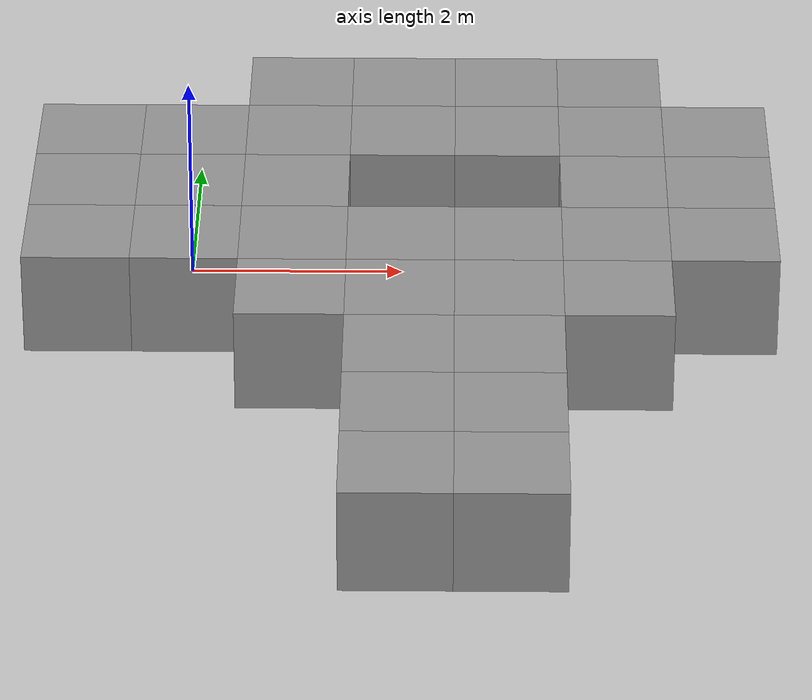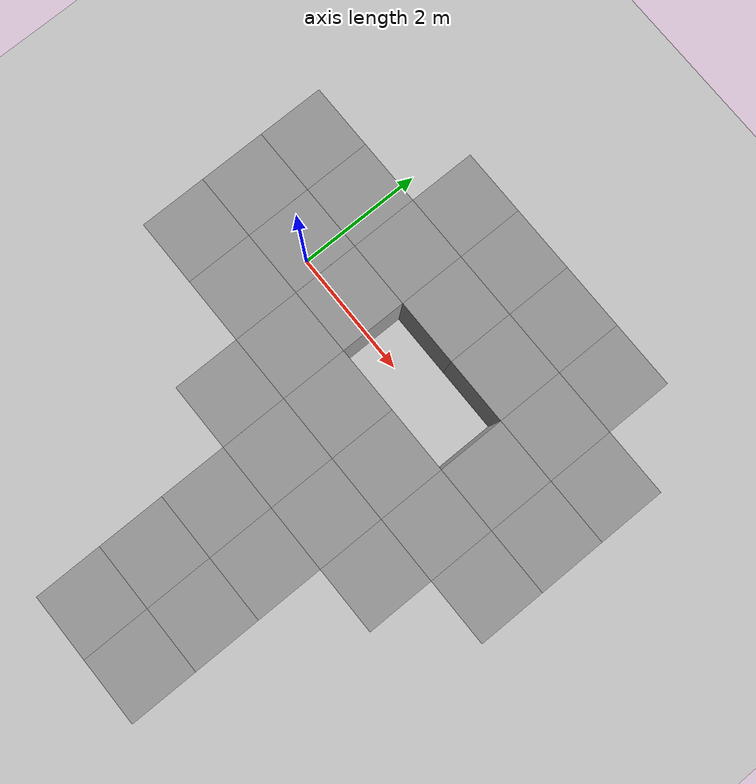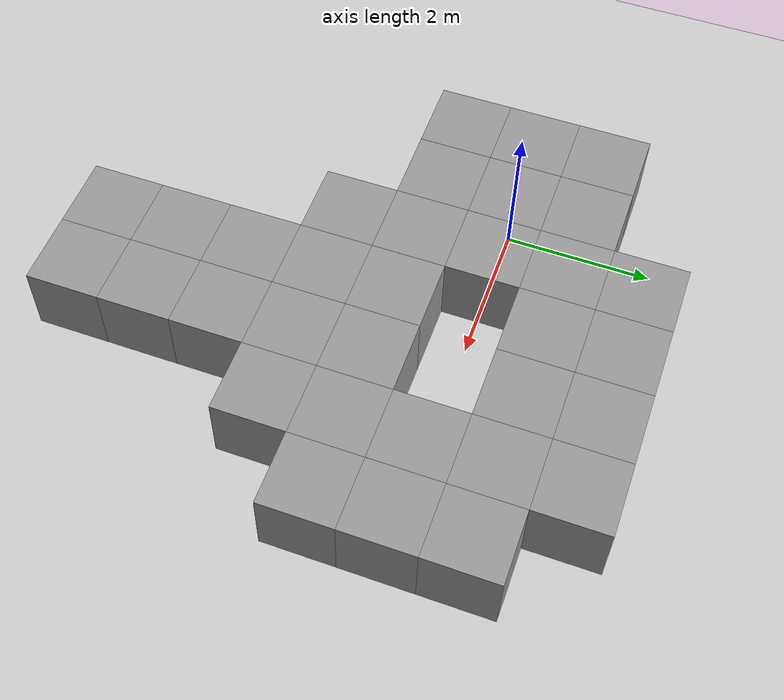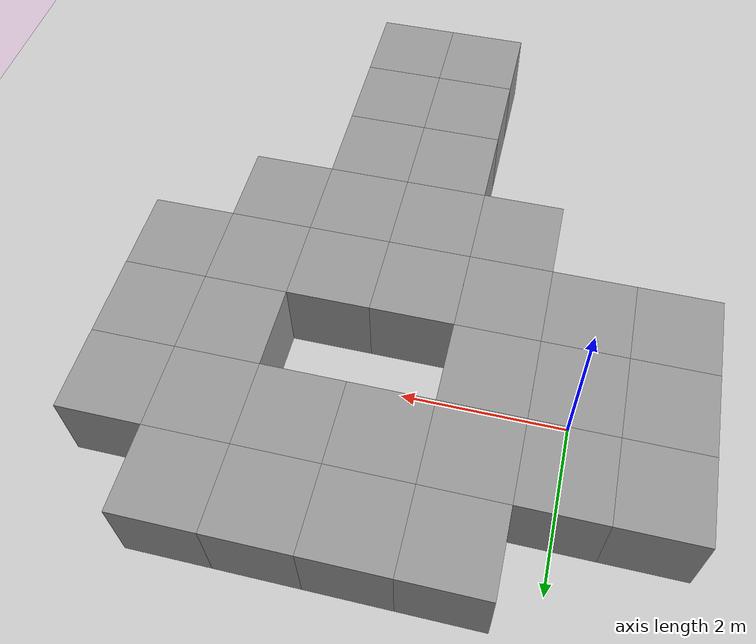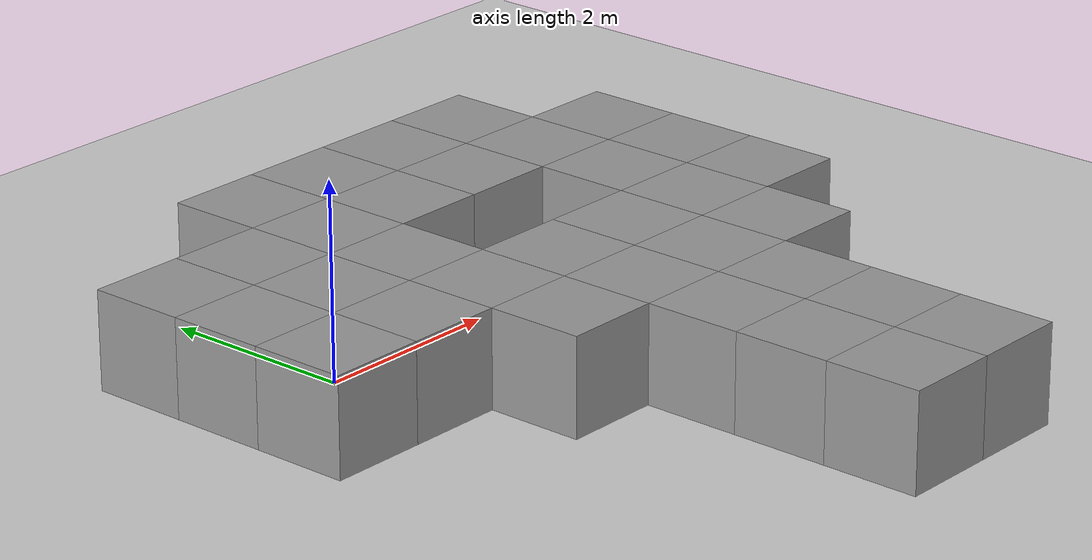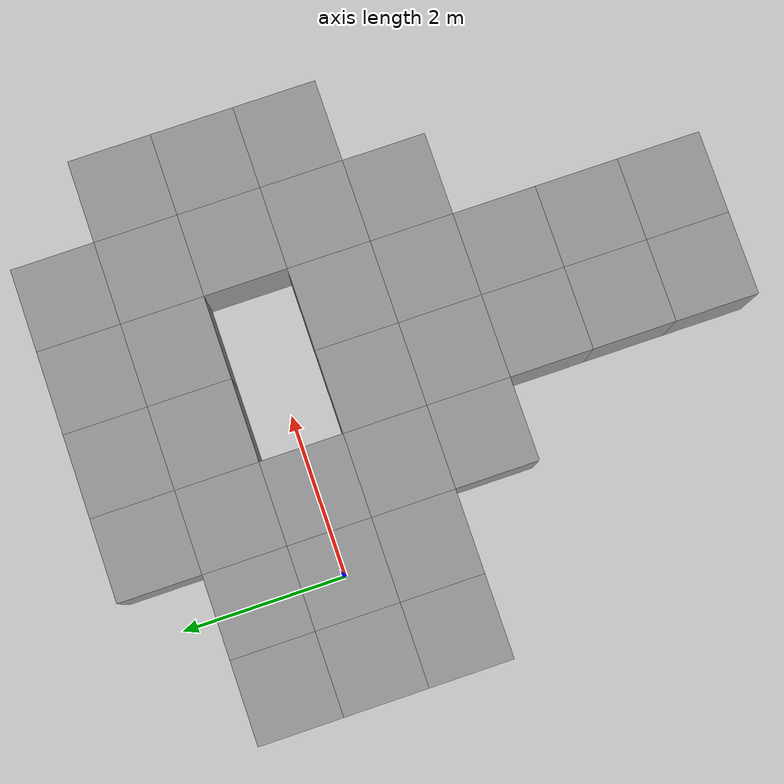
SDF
<sdf version="1.4">
 <world name="default">
  <light name="sun" type="directional">
   <pose>0 0 10 0 -0 0</pose>
   <diffuse>0.8 0.8 0.8 1</diffuse>
   <specular>0.2 0.2 0.2 1</specular>
   <attenuation>
    <range>1000</range>
    <constant>0.9</constant>
    <linear>0.01</linear>
    <quadratic>0.001</quadratic>
   </attenuation>
   <direction>-0.5 0.1 -0.9</direction>
  </light>
  <model name="ground_plane">
   <static>1</static>
   <link name="link">
    <collision name="collision">
     <geometry><plane><normal>0 0 1</normal><size>100 100</size></plane></geometry>
     <surface><friction><ode><mu>100</mu><mu2>50</mu2></ode></friction></surface>
    </collision>
    <visual name="visual">
     <cast_shadows>0</cast_shadows>
     <geometry><plane><normal>0 0 1</normal><size>100 100</size></plane></geometry>
     <material>
      <script><uri>file://media/materials/scripts/gazebo.material</uri><name>Gazebo/Grey</name></script>
     </material>
    </visual>
    <velocity_decay><linear>0</linear><angular>0</angular></velocity_decay>
   </link>
  </model>
  <physics type="ode">
   <max_step_size>0.001</max_step_size>
   <real_time_factor>1</real_time_factor>
   <real_time_update_rate>1000</real_time_update_rate>
   <gravity>0 0 -9.8</gravity>
  </physics>
  <scene><ambient>0.4 0.4 0.4 1</ambient><background>0.7 0.7 0.7 1</background><shadows>1</shadows></scene>
  <spherical_coordinates>
   <surface_model>EARTH_WGS84</surface_model>
   <latitude_deg>0</latitude_deg>
   <longitude_deg>0</longitude_deg>
   <elevation>0</elevation>
   <heading_deg>0</heading_deg>
  </spherical_coordinates>
  <model name="unit_box_4">
   <pose>3.3e-05 -7e-06 0.5 0 -0 1e-05</pose>
   <link name="link">
    <inertial>
     <mass>1</mass>
     <inertia><ixx>1</ixx><ixy>0</ixy><ixz>0</ixz><iyy>1</iyy><iyz>0</iyz><izz>1</izz></inertia>
    </inertial>
    <collision name="collision"><geometry><box><size>1 1 1</size></box></geometry></collision>
    <visual name="visual">
     <geometry><box><size>1 1 1</size></box></geometry>
     <material>
      <script><uri>file://media/materials/scripts/gazebo.material</uri><name>Gazebo/Grey</name></script>
     </material>
    </visual>
    <velocity_decay><linear>0</linear><angular>0</angular></velocity_decay>
   </link>
   <static>1</static>
  </model>
  <model name="unit_box_5">
   <pose>-2.5e-05 -1.00001 0.5 0 -0 3e-06</pose>
   <link name="link">
    <inertial>
     <mass>1</mass>
     <inertia><ixx>1</ixx><ixy>0</ixy><ixz>0</ixz><iyy>1</iyy><iyz>0</iyz><izz>1</izz></inertia>
    </inertial>
    <collision name="collision"><geometry><box><size>1 1 1</size></box></geometry></collision>
    <visual name="visual">
     <geometry><box><size>1 1 1</size></box></geometry>
     <material>
      <script><uri>file://media/materials/scripts/gazebo.material</uri><name>Gazebo/Grey</name></script>
     </material>
    </visual>
    <velocity_decay><linear>0</linear><angular>0</angular></velocity_decay>
   </link>
   <static>1</static>
  </model>
  <model name="unit_box_6">
   <pose>-6e-06 1 0.5 0 -0 0</pose>
   <link name="link">
    <inertial>
     <mass>1</mass>
     <inertia><ixx>1</ixx><ixy>0</ixy><ixz>0</ixz><iyy>1</iyy><iyz>0</iyz><izz>1</izz></inertia>
    </inertial>
    <collision name="collision"><geometry><box><size>1 1 1</size></box></geometry></collision>
    <visual name="visual">
     <geometry><box><size>1 1 1</size></box></geometry>
     <material>
      <script><uri>file://media/materials/scripts/gazebo.material</uri><name>Gazebo/Grey</name></script>
     </material>
    </visual>
    <velocity_decay><linear>0</linear><angular>0</angular></velocity_decay>
   </link>
   <static>1</static>
  </model>
  <model name="unit_box_7">
   <pose>0.999997 0.999999 0.5 0 -0 0</pose>
   <link name="link">
    <inertial>
     <mass>1</mass>
     <inertia><ixx>1</ixx><ixy>0</ixy><ixz>0</ixz><iyy>1</iyy><iyz>0</iyz><izz>1</izz></inertia>
    </inertial>
    <collision name="collision"><geometry><box><size>1 1 1</size></box></geometry></collision>
    <visual name="visual">
     <geometry><box><size>1 1 1</size></box></geometry>
     <material>
      <script><uri>file://media/materials/scripts/gazebo.material</uri><name>Gazebo/Grey</name></script>
     </material>
    </visual>
    <velocity_decay><linear>0</linear><angular>0</angular></velocity_decay>
   </link>
   <static>1</static>
  </model>
  <model name="unit_box_8">
   <pose>1.00015 -1e-06 0.5 0 -0 0</pose>
   <link name="link">
    <inertial>
     <mass>1</mass>
     <inertia><ixx>1</ixx><ixy>0</ixy><ixz>0</ixz><iyy>1</iyy><iyz>0</iyz><izz>1</izz></inertia>
    </inertial>
    <collision name="collision"><geometry><box><size>1 1 1</size></box></geometry></collision>
    <visual name="visual">
     <geometry><box><size>1 1 1</size></box></geometry>
     <material>
      <script><uri>file://media/materials/scripts/gazebo.material</uri><name>Gazebo/Grey</name></script>
     </material>
    </visual>
    <velocity_decay><linear>0</linear><angular>0</angular></velocity_decay>
   </link>
   <static>1</static>
  </model>
  <model name="unit_box_9">
   <pose>0.999978 -1 0.5 0 -0 1e-06</pose>
   <link name="link">
    <inertial>
     <mass>1</mass>
     <inertia><ixx>1</ixx><ixy>0</ixy><ixz>0</ixz><iyy>1</iyy><iyz>0</iyz><izz>1</izz></inertia>
    </inertial>
    <collision name="collision"><geometry><box><size>1 1 1</size></box></geometry></collision>
    <visual name="visual">
     <geometry><box><size>1 1 1</size></box></geometry>
     <material>
      <script><uri>file://media/materials/scripts/gazebo.material</uri><name>Gazebo/Grey</name></script>
     </material>
    </visual>
    <velocity_decay><linear>0</linear><angular>0</angular></velocity_decay>
   </link>
   <static>1</static>
  </model>
  <model name="unit_box_10">
   <pose>-1.00001 1 0.5 0 -0 0</pose>
   <link name="link">
    <inertial>
     <mass>1</mass>
     <inertia><ixx>1</ixx><ixy>0</ixy><ixz>0</ixz><iyy>1</iyy><iyz>0</iyz><izz>1</izz></inertia>
    </inertial>
    <collision name="collision"><geometry><box><size>1 1 1</size></box></geometry></collision>
    <visual name="visual">
     <geometry><box><size>1 1 1</size></box></geometry>
     <material>
      <script><uri>file://media/materials/scripts/gazebo.material</uri><name>Gazebo/Grey</name></script>
     </material>
    </visual>
    <velocity_decay><linear>0</linear><angular>0</angular></velocity_decay>
   </link>
   <static>1</static>
  </model>
  <model name="unit_box_11">
   <pose>-0.999988 -6e-06 0.5 0 -0 3e-06</pose>
   <link name="link">
    <inertial>
     <mass>1</mass>
     <inertia><ixx>1</ixx><ixy>0</ixy><ixz>0</ixz><iyy>1</iyy><iyz>0</iyz><izz>1</izz></inertia>
    </inertial>
    <collision name="collision"><geometry><box><size>1 1 1</size></box></geometry></collision>
    <visual name="visual">
     <geometry><box><size>1 1 1</size></box></geometry>
     <material>
      <script><uri>file://media/materials/scripts/gazebo.material</uri><name>Gazebo/Grey</name></script>
     </material>
    </visual>
    <velocity_decay><linear>0</linear><angular>0</angular></velocity_decay>
   </link>
   <static>1</static>
  </model>
  <model name="unit_box_12">
   <pose>-1.00003 -1.00001 0.5 0 -0 4e-06</pose>
   <link name="link">
    <inertial>
     <mass>1</mass>
     <inertia><ixx>1</ixx><ixy>0</ixy><ixz>0</ixz><iyy>1</iyy><iyz>0</iyz><izz>1</izz></inertia>
    </inertial>
    <collision name="collision"><geometry><box><size>1 1 1</size></box></geometry></collision>
    <visual name="visual">
     <geometry><box><size>1 1 1</size></box></geometry>
     <material>
      <script><uri>file://media/materials/scripts/gazebo.material</uri><name>Gazebo/Grey</name></script>
     </material>
    </visual>
    <velocity_decay><linear>0</linear><angular>0</angular></velocity_decay>
   </link>
   <static>1</static>
  </model>
  <model name="unit_box_13">
   <pose>0.999981 -2.00001 0.5 0 -0 8e-06</pose>
   <link name="link">
    <inertial>
     <mass>1</mass>
     <inertia><ixx>1</ixx><ixy>0</ixy><ixz>0</ixz><iyy>1</iyy><iyz>0</iyz><izz>1</izz></inertia>
    </inertial>
    <collision name="collision"><geometry><box><size>1 1 1</size></box></geometry></collision>
    <visual name="visual">
     <geometry><box><size>1 1 1</size></box></geometry>
     <material>
      <script><uri>file://media/materials/scripts/gazebo.material</uri><name>Gazebo/Grey</name></script>
     </material>
    </visual>
    <velocity_decay><linear>0</linear><angular>0</angular></velocity_decay>
   </link>
   <static>1</static>
  </model>
  <model name="unit_box_14">
   <pose>0.999991 2.00001 0.499996 3e-06 -4e-06 3e-06</pose>
   <link name="link">
    <inertial>
     <mass>1</mass>
     <inertia><ixx>1</ixx><ixy>0</ixy><ixz>0</ixz><iyy>1</iyy><iyz>0</iyz><izz>1</izz></inertia>
    </inertial>
    <collision name="collision"><geometry><box><size>1 1 1</size></box></geometry></collision>
    <visual name="visual">
     <geometry><box><size>1 1 1</size></box></geometry>
     <material>
      <script><uri>file://media/materials/scripts/gazebo.material</uri><name>Gazebo/Grey</name></script>
     </material>
    </visual>
    <velocity_decay><linear>0</linear><angular>0</angular></velocity_decay>
   </link>
   <static>1</static>
  </model>
  <model name="unit_box_15">
   <pose>2 2 0.5 -1e-06 -0 -1e-06</pose>
   <link name="link">
    <inertial>
     <mass>1</mass>
     <inertia><ixx>1</ixx><ixy>0</ixy><ixz>0</ixz><iyy>1</iyy><iyz>0</iyz><izz>1</izz></inertia>
    </inertial>
    <collision name="collision"><geometry><box><size>1 1 1</size></box></geometry></collision>
    <visual name="visual">
     <geometry><box><size>1 1 1</size></box></geometry>
     <material>
      <script><uri>file://media/materials/scripts/gazebo.material</uri><name>Gazebo/Grey</name></script>
     </material>
    </visual>
    <velocity_decay><linear>0</linear><angular>0</angular></velocity_decay>
   </link>
   <static>1</static>
  </model>
  <model name="unit_box_16">
   <pose>2 1 0.5 0 0 -1e-06</pose>
   <link name="link">
    <inertial>
     <mass>1</mass>
     <inertia><ixx>1</ixx><ixy>0</ixy><ixz>0</ixz><iyy>1</iyy><iyz>0</iyz><izz>1</izz></inertia>
    </inertial>
    <collision name="collision"><geometry><box><size>1 1 1</size></box></geometry></collision>
    <visual name="visual">
     <geometry><box><size>1 1 1</size></box></geometry>
     <material>
      <script><uri>file://media/materials/scripts/gazebo.material</uri><name>Gazebo/Grey</name></script>
     </material>
    </visual>
    <velocity_decay><linear>0</linear><angular>0</angular></velocity_decay>
   </link>
   <static>1</static>
  </model>
  <model name="unit_box_18">
   <pose>1.99999 -2 0.5 0 -0 6e-06</pose>
   <link name="link">
    <inertial>
     <mass>1</mass>
     <inertia><ixx>1</ixx><ixy>0</ixy><ixz>0</ixz><iyy>1</iyy><iyz>0</iyz><izz>1</izz></inertia>
    </inertial>
    <collision name="collision"><geometry><box><size>1 1 1</size></box></geometry></collision>
    <visual name="visual">
     <geometry><box><size>1 1 1</size></box></geometry>
     <material>
      <script><uri>file://media/materials/scripts/gazebo.material</uri><name>Gazebo/Grey</name></script>
     </material>
    </visual>
    <velocity_decay><linear>0</linear><angular>0</angular></velocity_decay>
   </link>
   <static>1</static>
  </model>
  <model name="unit_box_19">
   <pose>3 0.999997 0.5 0 -0 -4e-06</pose>
   <link name="link">
    <inertial>
     <mass>1</mass>
     <inertia><ixx>1</ixx><ixy>0</ixy><ixz>0</ixz><iyy>1</iyy><iyz>0</iyz><izz>1</izz></inertia>
    </inertial>
    <collision name="collision"><geometry><box><size>1 1 1</size></box></geometry></collision>
    <visual name="visual">
     <geometry><box><size>1 1 1</size></box></geometry>
     <material>
      <script><uri>file://media/materials/scripts/gazebo.material</uri><name>Gazebo/Grey</name></script>
     </material>
    </visual>
    <velocity_decay><linear>0</linear><angular>0</angular></velocity_decay>
   </link>
   <static>1</static>
  </model>
  <model name="unit_box_20">
   <pose>4 1.00001 0.5 -0 -0 -4e-06</pose>
   <link name="link">
    <inertial>
     <mass>1</mass>
     <inertia><ixx>1</ixx><ixy>0</ixy><ixz>0</ixz><iyy>1</iyy><iyz>0</iyz><izz>1</izz></inertia>
    </inertial>
    <collision name="collision"><geometry><box><size>1 1 1</size></box></geometry></collision>
    <visual name="visual">
     <geometry><box><size>1 1 1</size></box></geometry>
     <material>
      <script><uri>file://media/materials/scripts/gazebo.material</uri><name>Gazebo/Grey</name></script>
     </material>
    </visual>
    <velocity_decay><linear>0</linear><angular>0</angular></velocity_decay>
   </link>
   <static>1</static>
  </model>
  <model name="unit_box_21">
   <pose>4 -1e-06 0.5 -0 -0 -1.1e-05</pose>
   <link name="link">
    <inertial>
     <mass>1</mass>
     <inertia><ixx>1</ixx><ixy>0</ixy><ixz>0</ixz><iyy>1</iyy><iyz>0</iyz><izz>1</izz></inertia>
    </inertial>
    <collision name="collision"><geometry><box><size>1 1 1</size></box></geometry></collision>
    <visual name="visual">
     <geometry><box><size>1 1 1</size></box></geometry>
     <material>
      <script><uri>file://media/materials/scripts/gazebo.material</uri><name>Gazebo/Grey</name></script>
     </material>
    </visual>
    <velocity_decay><linear>0</linear><angular>0</angular></velocity_decay>
   </link>
   <static>1</static>
  </model>
  <model name="unit_box_22">
   <pose>4.00001 -1.00001 0.5 0 -0 1e-06</pose>
   <link name="link">
    <inertial>
     <mass>1</mass>
     <inertia><ixx>1</ixx><ixy>0</ixy><ixz>0</ixz><iyy>1</iyy><iyz>0</iyz><izz>1</izz></inertia>
    </inertial>
    <collision name="collision"><geometry><box><size>1 1 1</size></box></geometry></collision>
    <visual name="visual">
     <geometry><box><size>1 1 1</size></box></geometry>
     <material>
      <script><uri>file://media/materials/scripts/gazebo.material</uri><name>Gazebo/Grey</name></script>
     </material>
    </visual>
    <velocity_decay><linear>0</linear><angular>0</angular></velocity_decay>
   </link>
   <static>1</static>
  </model>
  <model name="unit_box_23">
   <pose>3 -0.999999 0.5 0 -0 3e-06</pose>
   <link name="link">
    <inertial>
     <mass>1</mass>
     <inertia><ixx>1</ixx><ixy>0</ixy><ixz>0</ixz><iyy>1</iyy><iyz>0</iyz><izz>1</izz></inertia>
    </inertial>
    <collision name="collision"><geometry><box><size>1 1 1</size></box></geometry></collision>
    <visual name="visual">
     <geometry><box><size>1 1 1</size></box></geometry>
     <material>
      <script><uri>file://media/materials/scripts/gazebo.material</uri><name>Gazebo/Grey</name></script>
     </material>
    </visual>
    <velocity_decay><linear>0</linear><angular>0</angular></velocity_decay>
   </link>
   <static>1</static>
  </model>
  <model name="unit_box_24">
   <pose>3.00001 -2 0.5 0 -0 2e-06</pose>
   <link name="link">
    <inertial>
     <mass>1</mass>
     <inertia><ixx>1</ixx><ixy>0</ixy><ixz>0</ixz><iyy>1</iyy><iyz>0</iyz><izz>1</izz></inertia>
    </inertial>
    <collision name="collision"><geometry><box><size>1 1 1</size></box></geometry></collision>
    <visual name="visual">
     <geometry><box><size>1 1 1</size></box></geometry>
     <material>
      <script><uri>file://media/materials/scripts/gazebo.material</uri><name>Gazebo/Grey</name></script>
     </material>
    </visual>
    <velocity_decay><linear>0</linear><angular>0</angular></velocity_decay>
   </link>
   <static>1</static>
  </model>
  <model name="unit_box_25">
   <pose>4.00001 -2.00001 0.5 0 -0 1e-06</pose>
   <link name="link">
    <inertial>
     <mass>1</mass>
     <inertia><ixx>1</ixx><ixy>0</ixy><ixz>0</ixz><iyy>1</iyy><iyz>0</iyz><izz>1</izz></inertia>
    </inertial>
    <collision name="collision"><geometry><box><size>1 1 1</size></box></geometry></collision>
    <visual name="visual">
     <geometry><box><size>1 1 1</size></box></geometry>
     <material>
      <script><uri>file://media/materials/scripts/gazebo.material</uri><name>Gazebo/Grey</name></script>
     </material>
    </visual>
    <velocity_decay><linear>0</linear><angular>0</angular></velocity_decay>
   </link>
   <static>1</static>
  </model>
  <model name="unit_box_26">
   <pose>3 2 0.5 -0 -0 -4e-06</pose>
   <link name="link">
    <inertial>
     <mass>1</mass>
     <inertia><ixx>1</ixx><ixy>0</ixy><ixz>0</ixz><iyy>1</iyy><iyz>0</iyz><izz>1</izz></inertia>
    </inertial>
    <collision name="collision"><geometry><box><size>1 1 1</size></box></geometry></collision>
    <visual name="visual">
     <geometry><box><size>1 1 1</size></box></geometry>
     <material>
      <script><uri>file://media/materials/scripts/gazebo.material</uri><name>Gazebo/Grey</name></script>
     </material>
    </visual>
    <velocity_decay><linear>0</linear><angular>0</angular></velocity_decay>
   </link>
   <static>1</static>
  </model>
  <model name="unit_box_27">
   <pose>4 2.00001 0.5 -0 -0 -2e-06</pose>
   <link name="link">
    <inertial>
     <mass>1</mass>
     <inertia><ixx>1</ixx><ixy>0</ixy><ixz>0</ixz><iyy>1</iyy><iyz>0</iyz><izz>1</izz></inertia>
    </inertial>
    <collision name="collision"><geometry><box><size>1 1 1</size></box></geometry></collision>
    <visual name="visual">
     <geometry><box><size>1 1 1</size></box></geometry>
     <material>
      <script><uri>file://media/materials/scripts/gazebo.material</uri><name>Gazebo/Grey</name></script>
     </material>
    </visual>
    <velocity_decay><linear>0</linear><angular>0</angular></velocity_decay>
   </link>
   <static>1</static>
  </model>
  <model name="unit_box_28">
   <pose>3 -3 0.5 0 -0 2e-06</pose>
   <link name="link">
    <inertial>
     <mass>1</mass>
     <inertia><ixx>1</ixx><ixy>0</ixy><ixz>0</ixz><iyy>1</iyy><iyz>0</iyz><izz>1</izz></inertia>
    </inertial>
    <collision name="collision"><geometry><box><size>1 1 1</size></box></geometry></collision>
    <visual name="visual">
     <geometry><box><size>1 1 1</size></box></geometry>
     <material>
      <script><uri>file://media/materials/scripts/gazebo.material</uri><name>Gazebo/Grey</name></script>
     </material>
    </visual>
    <velocity_decay><linear>0</linear><angular>0</angular></velocity_decay>
   </link>
   <static>1</static>
  </model>
  <model name="unit_box_29">
   <pose>1.99999 -3 0.5 0 -0 3e-06</pose>
   <link name="link">
    <inertial>
     <mass>1</mass>
     <inertia><ixx>1</ixx><ixy>0</ixy><ixz>0</ixz><iyy>1</iyy><iyz>0</iyz><izz>1</izz></inertia>
    </inertial>
    <collision name="collision"><geometry><box><size>1 1 1</size></box></geometry></collision>
    <visual name="visual">
     <geometry><box><size>1 1 1</size></box></geometry>
     <material>
      <script><uri>file://media/materials/scripts/gazebo.material</uri><name>Gazebo/Grey</name></script>
     </material>
    </visual>
    <velocity_decay><linear>0</linear><angular>0</angular></velocity_decay>
   </link>
   <static>1</static>
  </model>
  <model name="unit_box_30">
   <pose>1.99999 -4 0.5 0 -0 2e-06</pose>
   <link name="link">
    <inertial>
     <mass>1</mass>
     <inertia><ixx>1</ixx><ixy>0</ixy><ixz>0</ixz><iyy>1</iyy><iyz>0</iyz><izz>1</izz></inertia>
    </inertial>
    <collision name="collision"><geometry><box><size>1 1 1</size></box></geometry></collision>
    <visual name="visual">
     <geometry><box><size>1 1 1</size></box></geometry>
     <material>
      <script><uri>file://media/materials/scripts/gazebo.material</uri><name>Gazebo/Grey</name></script>
     </material>
    </visual>
    <velocity_decay><linear>0</linear><angular>0</angular></velocity_decay>
   </link>
   <static>1</static>
  </model>
  <model name="unit_box_31">
   <pose>3 -4 0.5 0 -0 2e-06</pose>
   <link name="link">
    <inertial>
     <mass>1</mass>
     <inertia><ixx>1</ixx><ixy>0</ixy><ixz>0</ixz><iyy>1</iyy><iyz>0</iyz><izz>1</izz></inertia>
    </inertial>
    <collision name="collision"><geometry><box><size>1 1 1</size></box></geometry></collision>
    <visual name="visual">
     <geometry><box><size>1 1 1</size></box></geometry>
     <material>
      <script><uri>file://media/materials/scripts/gazebo.material</uri><name>Gazebo/Grey</name></script>
     </material>
    </visual>
    <velocity_decay><linear>0</linear><angular>0</angular></velocity_decay>
   </link>
   <static>1</static>
  </model>
  <model name="unit_box_32">
   <pose>3 -5 0.5 0 -0 2e-06</pose>
   <link name="link">
    <inertial>
     <mass>1</mass>
     <inertia><ixx>1</ixx><ixy>0</ixy><ixz>0</ixz><iyy>1</iyy><iyz>0</iyz><izz>1</izz></inertia>
    </inertial>
    <collision name="collision"><geometry><box><size>1 1 1</size></box></geometry></collision>
    <visual name="visual">
     <geometry><box><size>1 1 1</size></box></geometry>
     <material>
      <script><uri>file://media/materials/scripts/gazebo.material</uri><name>Gazebo/Grey</name></script>
     </material>
    </visual>
    <velocity_decay><linear>0</linear><angular>0</angular></velocity_decay>
   </link>
   <static>1</static>
  </model>
  <model name="unit_box_33">
   <pose>2 -5 0.5 0 1e-06 4e-06</pose>
   <link name="link">
    <inertial>
     <mass>1</mass>
     <inertia><ixx>1</ixx><ixy>0</ixy><ixz>0</ixz><iyy>1</iyy><iyz>0</iyz><izz>1</izz></inertia>
    </inertial>
    <collision name="collision"><geometry><box><size>1 1 1</size></box></geometry></collision>
    <visual name="visual">
     <geometry><box><size>1 1 1</size></box></geometry>
     <material>
      <script><uri>file://media/materials/scripts/gazebo.material</uri><name>Gazebo/Grey</name></script>
     </material>
    </visual>
    <velocity_decay><linear>0</linear><angular>0</angular></velocity_decay>
   </link>
   <static>1</static>
  </model>
  <model name="unit_box_35">
   <pose>5 1 0.5 -0 -0 -2e-06</pose>
   <link name="link">
    <inertial>
     <mass>1</mass>
     <inertia><ixx>1</ixx><ixy>0</ixy><ixz>0</ixz><iyy>1</iyy><iyz>0</iyz><izz>1</izz></inertia>
    </inertial>
    <collision name="collision"><geometry><box><size>1 1 1</size></box></geometry></collision>
    <visual name="visual">
     <geometry><box><size>1 1 1</size></box></geometry>
     <material>
      <script><uri>file://media/materials/scripts/gazebo.material</uri><name>Gazebo/Grey</name></script>
     </material>
    </visual>
    <velocity_decay><linear>0</linear><angular>0</angular></velocity_decay>
   </link>
   <static>1</static>
  </model>
  <model name="unit_box_36">
   <pose>5 1e-06 0.5 0 0 -2e-06</pose>
   <link name="link">
    <inertial>
     <mass>1</mass>
     <inertia><ixx>1</ixx><ixy>0</ixy><ixz>0</ixz><iyy>1</iyy><iyz>0</iyz><izz>1</izz></inertia>
    </inertial>
    <collision name="collision"><geometry><box><size>1 1 1</size></box></geometry></collision>
    <visual name="visual">
     <geometry><box><size>1 1 1</size></box></geometry>
     <material>
      <script><uri>file://media/materials/scripts/gazebo.material</uri><name>Gazebo/Grey</name></script>
     </material>
    </visual>
    <velocity_decay><linear>0</linear><angular>0</angular></velocity_decay>
   </link>
   <static>1</static>
  </model>
  <model name="unit_box_37">
   <pose>5.00001 -1 0.5 0 -0 -1e-06</pose>
   <link name="link">
    <inertial>
     <mass>1</mass>
     <inertia><ixx>1</ixx><ixy>0</ixy><ixz>0</ixz><iyy>1</iyy><iyz>0</iyz><izz>1</izz></inertia>
    </inertial>
    <collision name="collision"><geometry><box><size>1 1 1</size></box></geometry></collision>
    <visual name="visual">
     <geometry><box><size>1 1 1</size></box></geometry>
     <material>
      <script><uri>file://media/materials/scripts/gazebo.material</uri><name>Gazebo/Grey</name></script>
     </material>
    </visual>
    <velocity_decay><linear>0</linear><angular>0</angular></velocity_decay>
   </link>
   <static>1</static>
  </model>
  <model name="unit_box_38">
   <pose>2 -0.999998 0.5 0 -0 7e-06</pose>
   <link name="link">
    <inertial>
     <mass>1</mass>
     <inertia><ixx>1</ixx><ixy>0</ixy><ixz>0</ixz><iyy>1</iyy><iyz>0</iyz><izz>1</izz></inertia>
    </inertial>
    <collision name="collision"><geometry><box><size>1 1 1</size></box></geometry></collision>
    <visual name="visual">
     <geometry><box><size>1 1 1</size></box></geometry>
     <material>
      <script><uri>file://media/materials/scripts/gazebo.material</uri><name>Gazebo/Grey</name></script>
     </material>
    </visual>
    <velocity_decay><linear>0</linear><angular>0</angular></velocity_decay>
   </link>
   <static>1</static>
  </model>
 </world>
</sdf>
